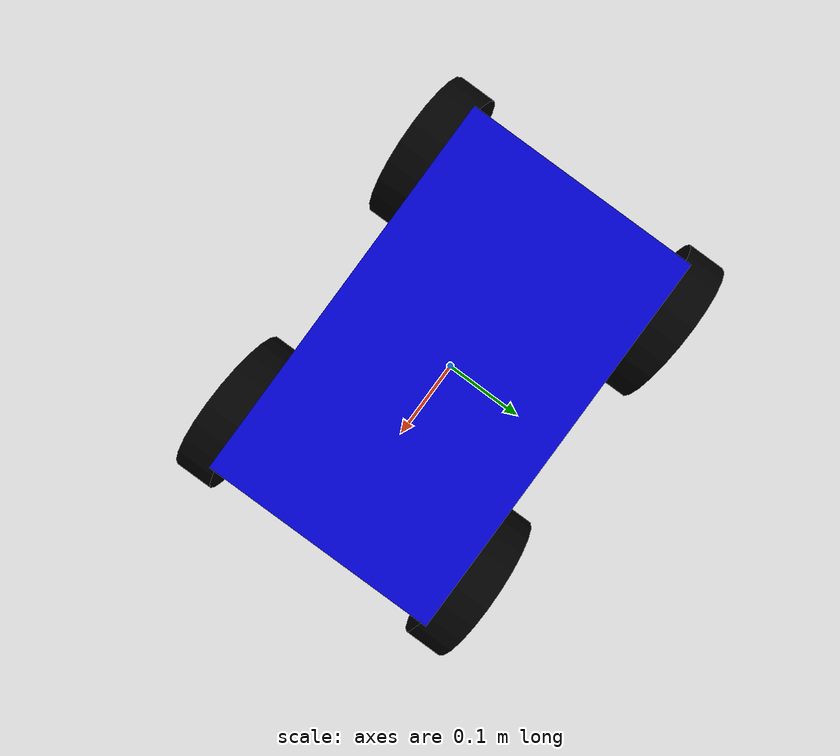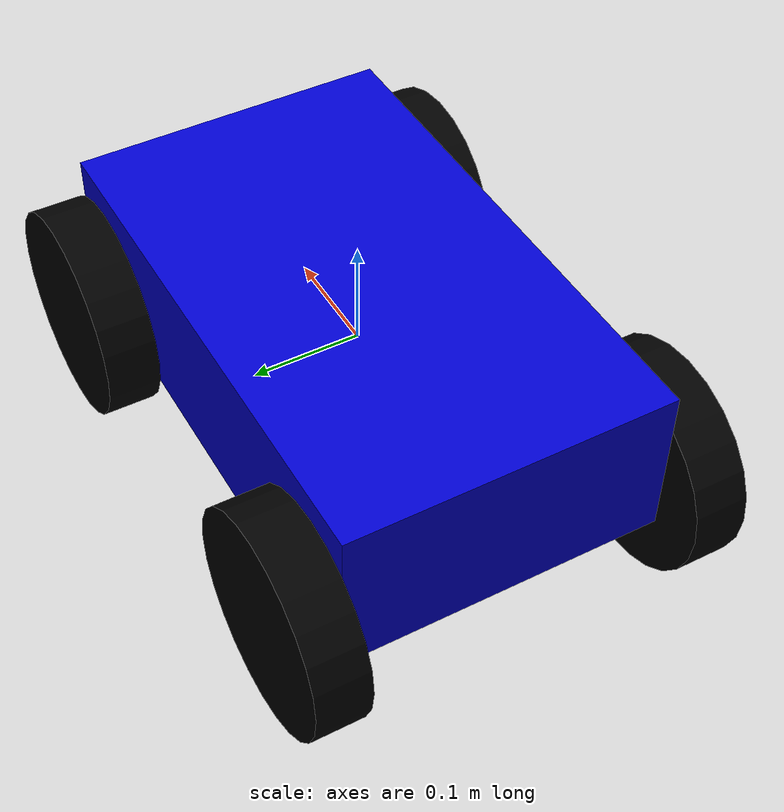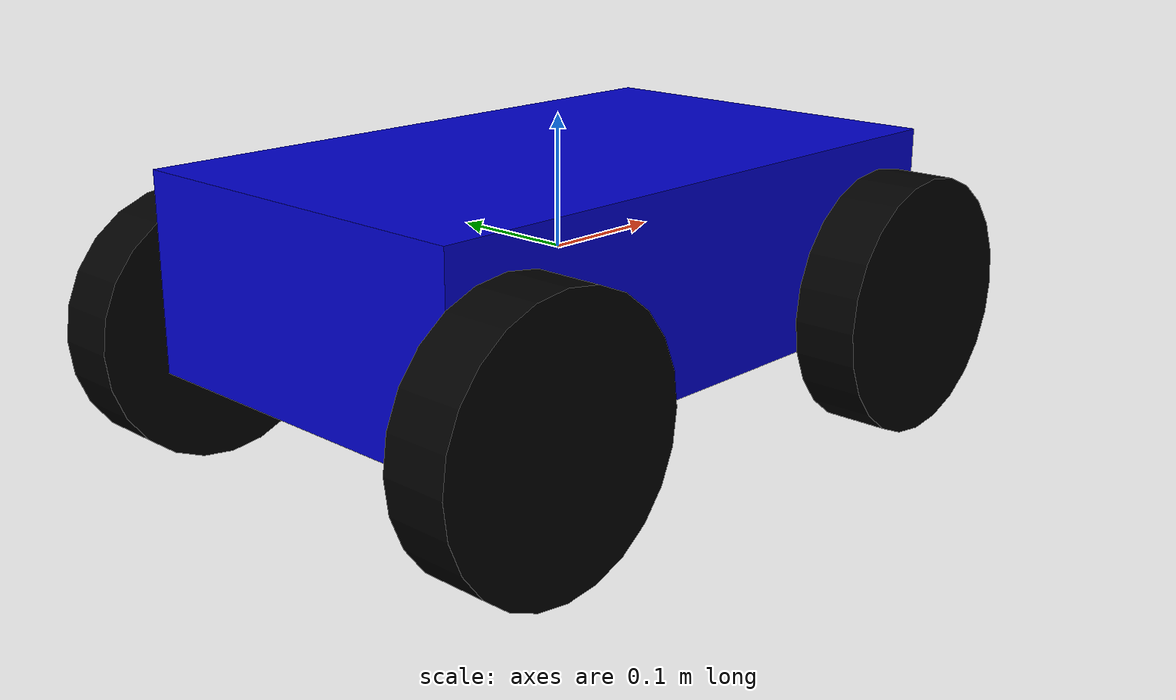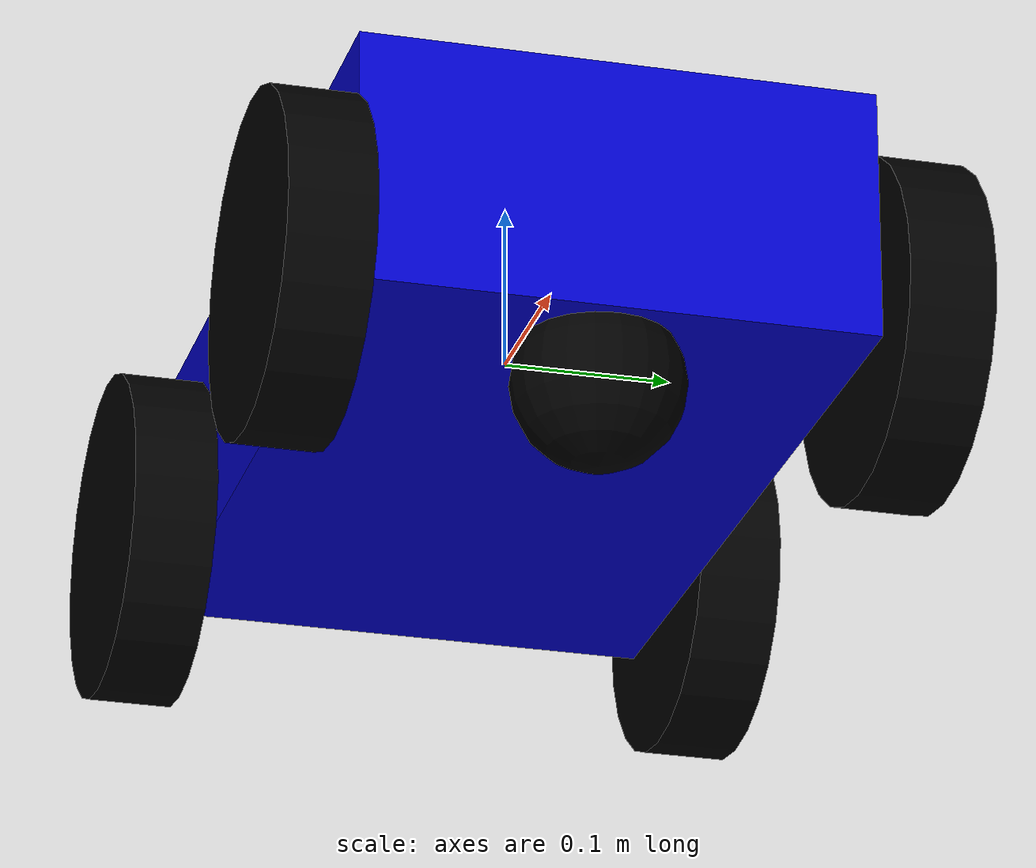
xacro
<?xml version="1.0"?>

<robot name="diffbot" xmlns:xacro="http://www.ros.org/wiki/xacro">

    <!-- Materials -->
    <material name="blue">
        <color rgba="0 0 0.8 1"/>
    </material>

    <material name="black">
        <color rgba="0 0 0 1"/>
    </material>

    <material name="white">
        <color rgba="1 1 1 1"/>
    </material>

    <material name="red">
        <color rgba="1 0 0 1"/>
    </material>

    <material name="green">
        <color rgba="0 1 0 1"/>
    </material>

    <!-- Base Link -->
    <link name="base_link">
        <visual>
            <geometry>
                <box size="0.5 0.3 0.15"/>
            </geometry>
            <material name="blue"/>
        </visual>
        <collision>
            <geometry>
                <box size="0.5 0.3 0.15"/>
            </geometry>
        </collision>
    </link>

    <!-- left wheel -->
    <link name="left_wheel">
        <visual>
            <geometry>
                <cylinder length="0.05" radius="0.1"/>
            </geometry>
            <material name="black"/>
        </visual>
        <collision>
            <geometry>
                <cylinder length="0.05" radius="0.1"/>
            </geometry>
        </collision>
        <inertial>
            <mass value="0.5"/>
            <inertia ixx="0.01" ixy="0" ixz="0" iyy="0.01" iyz="0" izz="0.01"/>
        </inertial>
    </link>

    <!-- right wheel -->
    <link name="right_wheel">
        <visual>
            <geometry>
                <cylinder length="0.05" radius="0.1"/>
            </geometry>
            <material name="black"/>
        </visual>
        <collision>
            <geometry>
                <cylinder length="0.05" radius="0.1"/>
            </geometry>
        </collision>
        <inertial>
            <mass value="0.5"/>
            <inertia ixx="0.01" ixy="0" ixz="0" iyy="0.01" iyz="0" izz="0.01"/>
        </inertial>
    </link>

    <!-- left wheel -->
    <link name="back_left_wheel">
        <visual>
            <geometry>
                <cylinder length="0.05" radius="0.1"/>
            </geometry>
            <material name="black"/>
        </visual>
        <collision>
            <geometry>
                <cylinder length="0.05" radius="0.1"/>
            </geometry>
        </collision>
        <inertial>
            <mass value="0.01"/>
            <inertia ixx="0.01" ixy="0" ixz="0" iyy="0.01" iyz="0" izz="0.01"/>
        </inertial>
    </link>

    <!-- right wheel -->
    <link name="back_right_wheel">
        <visual>
            <geometry>
                <cylinder length="0.05" radius="0.1"/>
            </geometry>
            <material name="black"/>
        </visual>
        <collision>
            <geometry>
                <cylinder length="0.05" radius="0.1"/>
            </geometry>
        </collision>
        <inertial>
            <mass value="0.01"/>
            <inertia ixx="0.01" ixy="0" ixz="0" iyy="0.01" iyz="0" izz="0.01"/>
        </inertial>
    </link>

    <!-- Caster Wheel -->
    <link name="caster_wheel">
        <visual>
            <geometry>
                <sphere radius="0.05"/>
            </geometry>
            <material name="black"/>
        </visual>
        <collision>
            <geometry>
                <sphere radius="0.05"/>
            </geometry>
        </collision>
        <inertial>
            <mass value="0.1"/>
            <inertia ixx="0.01" ixy="0" ixz="0" iyy="0.01" iyz="0" izz="0.01"/>
        </inertial>
    </link>

    <!-- Left Wheel Joint -->
    <joint name="left_wheel_joint" type="continuous">
        <parent link="base_link"/>
        <child link="left_wheel"/>
        <origin xyz="-0.2 0.175 -0.05" rpy="-1.5708 0 0"/>
        <axis xyz="0 0 1"/>
    </joint>

    <!-- Right Wheel Joint -->
    <joint name="right_wheel_joint" type="continuous">
        <parent link="base_link"/>
        <child link="right_wheel"/>
        <origin xyz="-0.2 -0.175 -0.05" rpy="-1.5708 0 0"/>
        <axis xyz="0 0 1"/>
    </joint>

    <!-- Left Wheel Joint -->
    <joint name="back_left_wheel_joint" type="continuous">
        <parent link="base_link"/>
        <child link="back_left_wheel"/>
        <origin xyz="0.2 0.175 -0.05" rpy="-1.5708 0 0"/>
        <axis xyz="0 0 1"/>
    </joint>

    <!-- Right Wheel Joint -->
    <joint name="back_right_wheel_joint" type="continuous">
        <parent link="base_link"/>
        <child link="back_right_wheel"/>
        <origin xyz="0.2 -0.175 -0.05" rpy="-1.5708 0 0"/>
        <axis xyz="0 0 1"/>
    </joint>

    <!-- Caster Wheel Joint -->
    <joint name="caster_wheel_joint" type="fixed">
        <parent link="base_link"/>
        <child link="caster_wheel"/>
        <origin xyz="0.2 0 -0.1"/>
        <axis xyz="0 0 1"/>
    </joint>

    <!-- Gazebo Colors -->
    <gazebo reference="base_link">
        <material>Gazebo/Blue</material>
    </gazebo>

    <gazebo reference="left_wheel">
        <material>Gazebo/Black</material>
        <mu1 value="1.0"/>
        <mu2 value="1.0"/>
    </gazebo>

    <gazebo reference="right_wheel">
        <material>Gazebo/Black</material>
        <mu1 value="1.0"/>
        <mu2 value="1.0"/>
    </gazebo>

    <gazebo reference="caster_wheel">
        <material>Gazebo/Black</material>
        <mu1 value="0.1"/>
        <mu2 value="0.1"/>
    </gazebo>

    <gazebo reference="back_right_wheel">
        <material>Gazebo/Black</material>
        <mu1 value="1.0"/>
        <mu2 value="1.0"/>
    </gazebo>

    <gazebo reference="back_left_wheel">
        <material>Gazebo/Black</material>
        <mu1 value="0.1"/>
        <mu2 value="0.1"/>
    </gazebo>

    <!-- Gazebo plugin for differential drive -->
    <gazebo>
        <plugin filename="gz-sim-diff-drive-system" name="gz::sim::systems::DiffDrive">
            <odom_publisher_frequency>50</odom_publisher_frequency>
            <left_joint>left_wheel_joint</left_joint>
            <right_joint>right_wheel_joint</right_joint>
            <wheel_separation>0.35</wheel_separation>
            <wheel_diameter>0.2</wheel_diameter>
            <max_wheel_torque>20</max_wheel_torque>
            <max_linear_acceleration>1.0</max_linear_acceleration>
            <topic>cmd_vel</topic>
            <publish_odom>true</publish_odom>
            <publish_odom_tf>true</publish_odom_tf>
            <publish_wheel_tf>true</publish_wheel_tf>
            <odom_topic>odom</odom_topic>
            <frame_id>odom</frame_id>
            <child_frame_id>base_link</child_frame_id>
        </plugin>

        <plugin filename="gz-sim-joint-state-publisher-system" name="gz::sim::systems::JointStatePublisher">
            <update_rate>50</update_rate>
            <joint_name>left_wheel_joint</joint_name>
            <joint_name>right_wheel_joint</joint_name>
        </plugin>
  </gazebo>

</robot>
